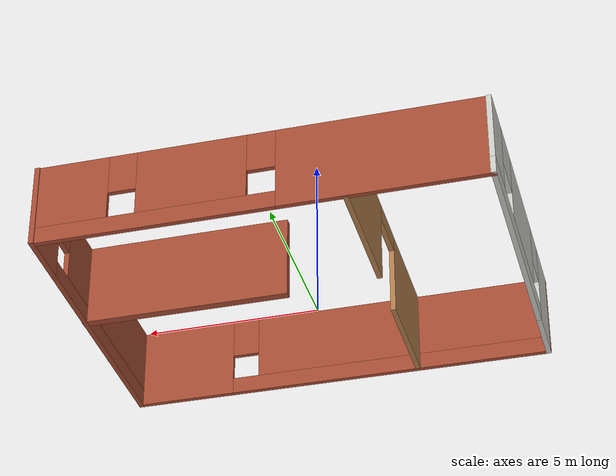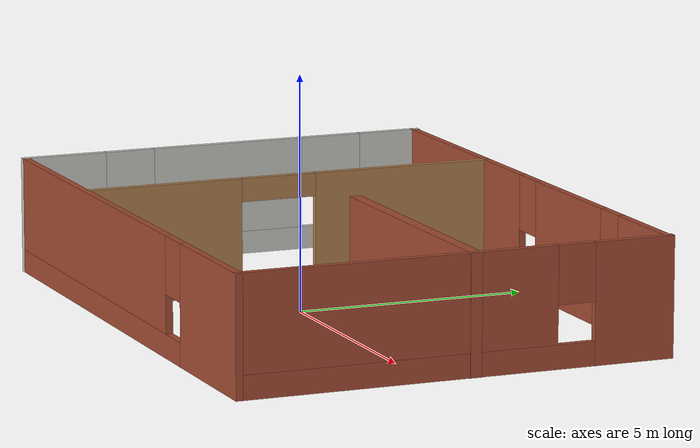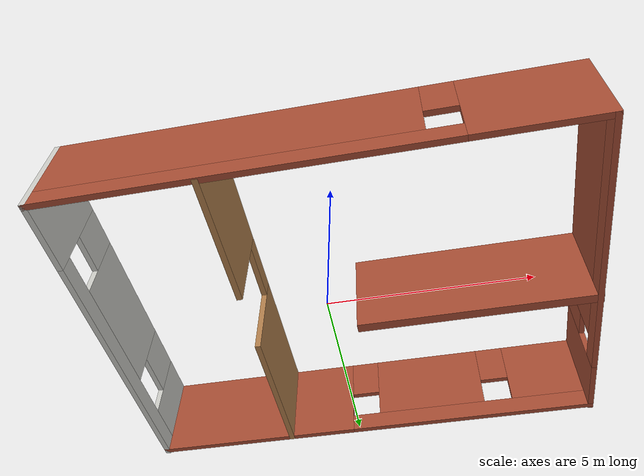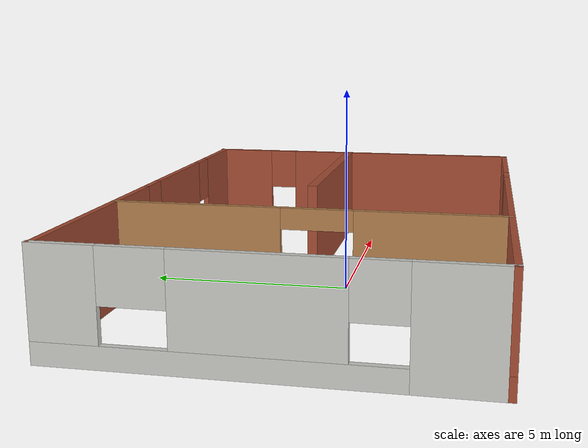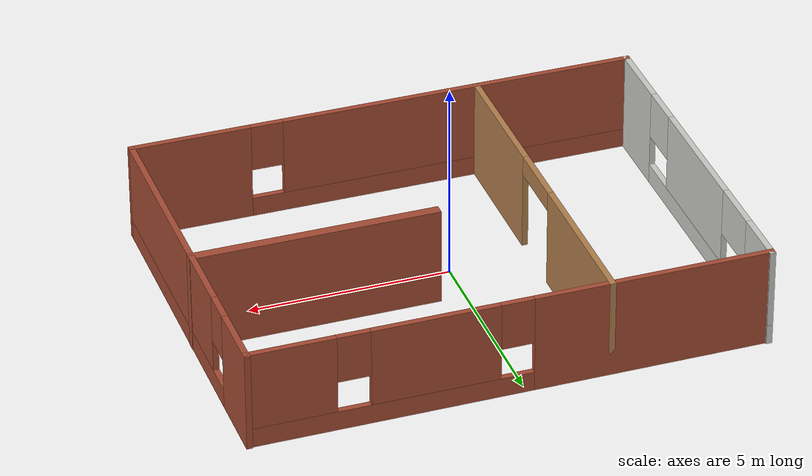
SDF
<?xml version='1.0'?>
<sdf version='1.6'>
  <model name='small_test_building'>
    <pose frame=''>0.317568 0.621309 0 0 -0 0</pose>
    <link name='Wall_1'>
      <pose frame=''>-0.004477 4.55 0 0 -0 0</pose>
      <visual name='Wall_1_Visual_0'>
        <pose frame=''>-3.44177 0 1.25 0 -0 0</pose>
        <geometry>
          <box>
            <size>5.86646 0.15 2.5</size>
          </box>
        </geometry>
        <material>
          <script>
            <uri>file://media/materials/scripts/gazebo.material</uri>
            <name>Gazebo/Bricks</name>
          </script>
          <ambient>0.435294 0.796078 0.67451 1</ambient>
        </material>
      </visual>
      <collision name='Wall_1_Collision_0'>
        <geometry>
          <box>
            <size>5.86646 0.15 2.5</size>
          </box>
        </geometry>
        <pose frame=''>-3.44177 0 1.25 0 -0 0</pose>
      </collision>
      <visual name='Wall_1_Visual_1'>
        <pose frame=''>2.93323 0 0.25 0 -0 0</pose>
        <geometry>
          <box>
            <size>6.88354 0.15 0.5</size>
          </box>
        </geometry>
        <material>
          <script>
            <uri>file://media/materials/scripts/gazebo.material</uri>
            <name>Gazebo/Bricks</name>
          </script>
          <ambient>0.435294 0.796078 0.67451 1</ambient>
        </material>
      </visual>
      <collision name='Wall_1_Collision_1'>
        <geometry>
          <box>
            <size>6.88354 0.15 0.5</size>
          </box>
        </geometry>
        <pose frame=''>2.93323 0 0.25 0 -0 0</pose>
      </collision>
      <visual name='Wall_1_Visual_2'>
        <pose frame=''>1.84388 0 1.5 0 -0 0</pose>
        <geometry>
          <box>
            <size>3.10484 0.15 2</size>
          </box>
        </geometry>
        <material>
          <script>
            <uri>file://media/materials/scripts/gazebo.material</uri>
            <name>Gazebo/Bricks</name>
          </script>
          <ambient>0.435294 0.796078 0.67451 1</ambient>
        </material>
      </visual>
      <collision name='Wall_1_Collision_2'>
        <geometry>
          <box>
            <size>3.10484 0.15 2</size>
          </box>
        </geometry>
        <pose frame=''>1.84388 0 1.5 0 -0 0</pose>
      </collision>
      <visual name='Wall_1_Visual_3'>
        <pose frame=''>5.28565 0 1.5 0 -0 0</pose>
        <geometry>
          <box>
            <size>2.17869 0.15 2</size>
          </box>
        </geometry>
        <material>
          <script>
            <uri>file://media/materials/scripts/gazebo.material</uri>
            <name>Gazebo/Bricks</name>
          </script>
          <ambient>0.435294 0.796078 0.67451 1</ambient>
        </material>
      </visual>
      <collision name='Wall_1_Collision_3'>
        <geometry>
          <box>
            <size>2.17869 0.15 2</size>
          </box>
        </geometry>
        <pose frame=''>5.28565 0 1.5 0 -0 0</pose>
      </collision>
      <visual name='Wall_1_Visual_4'>
        <pose frame=''>-0.108538 0 1.9 0 -0 0</pose>
        <geometry>
          <box>
            <size>0.8 0.15 1.2</size>
          </box>
        </geometry>
        <material>
          <script>
            <uri>file://media/materials/scripts/gazebo.material</uri>
            <name>Gazebo/Bricks</name>
          </script>
          <ambient>0.435294 0.796078 0.67451 1</ambient>
        </material>
      </visual>
      <collision name='Wall_1_Collision_4'>
        <geometry>
          <box>
            <size>0.8 0.15 1.2</size>
          </box>
        </geometry>
        <pose frame=''>-0.108538 0 1.9 0 -0 0</pose>
      </collision>
      <visual name='Wall_1_Visual_5'>
        <pose frame=''>3.7963 0 1.9 0 -0 0</pose>
        <geometry>
          <box>
            <size>0.8 0.15 1.2</size>
          </box>
        </geometry>
        <material>
          <script>
            <uri>file://media/materials/scripts/gazebo.material</uri>
            <name>Gazebo/Bricks</name>
          </script>
          <ambient>0.435294 0.796078 0.67451 1</ambient>
        </material>
      </visual>
      <collision name='Wall_1_Collision_5'>
        <geometry>
          <box>
            <size>0.8 0.15 1.2</size>
          </box>
        </geometry>
        <pose frame=''>3.7963 0 1.9 0 -0 0</pose>
      </collision>
    </link>
    <link name='Wall_2'>
      <pose frame=''>6.29552 0 0 0 0 -1.5708</pose>
      <visual name='Wall_2_Visual_0'>
        <pose frame=''>-3.79461 0 1.25 0 -0 0</pose>
        <geometry>
          <box>
            <size>1.73114 0.15 2.5</size>
          </box>
        </geometry>
        <material>
          <script>
            <uri>file://media/materials/scripts/gazebo.material</uri>
            <name>Gazebo/Bricks</name>
          </script>
          <ambient>1 1 1 1</ambient>
        </material>
      </visual>
      <collision name='Wall_2_Collision_0'>
        <geometry>
          <box>
            <size>1.73114 0.15 2.5</size>
          </box>
        </geometry>
        <pose frame=''>-3.79461 0 1.25 0 -0 0</pose>
      </collision>
      <visual name='Wall_2_Visual_1'>
        <pose frame=''>0.865572 0 0.25 0 -0 0</pose>
        <geometry>
          <box>
            <size>7.58921 0.15 0.5</size>
          </box>
        </geometry>
        <material>
          <script>
            <uri>file://media/materials/scripts/gazebo.material</uri>
            <name>Gazebo/Bricks</name>
          </script>
          <ambient>1 1 1 1</ambient>
        </material>
      </visual>
      <collision name='Wall_2_Collision_1'>
        <geometry>
          <box>
            <size>7.58921 0.15 0.5</size>
          </box>
        </geometry>
        <pose frame=''>0.865572 0 0.25 0 -0 0</pose>
      </collision>
      <visual name='Wall_2_Visual_2'>
        <pose frame=''>1.26557 0 1.5 0 -0 0</pose>
        <geometry>
          <box>
            <size>6.78921 0.15 2</size>
          </box>
        </geometry>
        <material>
          <script>
            <uri>file://media/materials/scripts/gazebo.material</uri>
            <name>Gazebo/Bricks</name>
          </script>
          <ambient>1 1 1 1</ambient>
        </material>
      </visual>
      <collision name='Wall_2_Collision_2'>
        <geometry>
          <box>
            <size>6.78921 0.15 2</size>
          </box>
        </geometry>
        <pose frame=''>1.26557 0 1.5 0 -0 0</pose>
      </collision>
      <visual name='Wall_2_Visual_3'>
        <pose frame=''>-2.52903 0 1.9 0 -0 0</pose>
        <geometry>
          <box>
            <size>0.8 0.15 1.2</size>
          </box>
        </geometry>
        <material>
          <script>
            <uri>file://media/materials/scripts/gazebo.material</uri>
            <name>Gazebo/Bricks</name>
          </script>
          <ambient>1 1 1 1</ambient>
        </material>
      </visual>
      <collision name='Wall_2_Collision_3'>
        <geometry>
          <box>
            <size>0.8 0.15 1.2</size>
          </box>
        </geometry>
        <pose frame=''>-2.52903 0 1.9 0 -0 0</pose>
      </collision>
    </link>
    <link name='Wall_3'>
      <pose frame=''>-0.004477 -4.58518 0 0 -0 3.14159</pose>
      <visual name='Wall_3_Visual_0'>
        <pose frame=''>-4.86351 0 1.25 0 -0 0</pose>
        <geometry>
          <box>
            <size>3.02298 0.15 2.5</size>
          </box>
        </geometry>
        <material>
          <script>
            <uri>file://media/materials/scripts/gazebo.material</uri>
            <name>Gazebo/Bricks</name>
          </script>
          <ambient>0.760784 0.662745 0.627451 1</ambient>
        </material>
      </visual>
      <collision name='Wall_3_Collision_0'>
        <geometry>
          <box>
            <size>3.02298 0.15 2.5</size>
          </box>
        </geometry>
        <pose frame=''>-4.86351 0 1.25 0 -0 0</pose>
      </collision>
      <visual name='Wall_3_Visual_1'>
        <pose frame=''>1.51149 0 0.25 0 -0 0</pose>
        <geometry>
          <box>
            <size>9.72701 0.15 0.5</size>
          </box>
        </geometry>
        <material>
          <script>
            <uri>file://media/materials/scripts/gazebo.material</uri>
            <name>Gazebo/Bricks</name>
          </script>
          <ambient>0.760784 0.662745 0.627451 1</ambient>
        </material>
      </visual>
      <collision name='Wall_3_Collision_1'>
        <geometry>
          <box>
            <size>9.72701 0.15 0.5</size>
          </box>
        </geometry>
        <pose frame=''>1.51149 0 0.25 0 -0 0</pose>
      </collision>
      <visual name='Wall_3_Visual_2'>
        <pose frame=''>1.91149 0 1.5 0 -0 0</pose>
        <geometry>
          <box>
            <size>8.92702 0.15 2</size>
          </box>
        </geometry>
        <material>
          <script>
            <uri>file://media/materials/scripts/gazebo.material</uri>
            <name>Gazebo/Bricks</name>
          </script>
          <ambient>0.760784 0.662745 0.627451 1</ambient>
        </material>
      </visual>
      <collision name='Wall_3_Collision_2'>
        <geometry>
          <box>
            <size>8.92702 0.15 2</size>
          </box>
        </geometry>
        <pose frame=''>1.91149 0 1.5 0 -0 0</pose>
      </collision>
      <visual name='Wall_3_Visual_3'>
        <pose frame=''>-2.95201 0 1.9 0 -0 0</pose>
        <geometry>
          <box>
            <size>0.8 0.15 1.2</size>
          </box>
        </geometry>
        <material>
          <script>
            <uri>file://media/materials/scripts/gazebo.material</uri>
            <name>Gazebo/Bricks</name>
          </script>
          <ambient>0.760784 0.662745 0.627451 1</ambient>
        </material>
      </visual>
      <collision name='Wall_3_Collision_3'>
        <geometry>
          <box>
            <size>0.8 0.15 1.2</size>
          </box>
        </geometry>
        <pose frame=''>-2.95201 0 1.9 0 -0 0</pose>
      </collision>
    </link>
    <link name='Wall_4'>
      <pose frame=''>-6.30448 0 0 0 -0 1.5708</pose>
      <visual name='Wall_4_Visual_0'>
        <pose frame=''>-3.71106 0 1.25 0 -0 0</pose>
        <geometry>
          <box>
            <size>1.89823 0.15 2.5</size>
          </box>
        </geometry>
        <material>
          <script>
            <uri>file://media/materials/scripts/gazebo.material</uri>
            <name>Gazebo/CeilingTiled</name>
          </script>
          <ambient>1 1 1 1</ambient>
        </material>
      </visual>
      <collision name='Wall_4_Collision_0'>
        <geometry>
          <box>
            <size>1.89823 0.15 2.5</size>
          </box>
        </geometry>
        <pose frame=''>-3.71106 0 1.25 0 -0 0</pose>
      </collision>
      <visual name='Wall_4_Visual_1'>
        <pose frame=''>0.949117 0 0.25 0 -0 0</pose>
        <geometry>
          <box>
            <size>7.42212 0.15 0.5</size>
          </box>
        </geometry>
        <material>
          <script>
            <uri>file://media/materials/scripts/gazebo.material</uri>
            <name>Gazebo/CeilingTiled</name>
          </script>
          <ambient>1 1 1 1</ambient>
        </material>
      </visual>
      <collision name='Wall_4_Collision_1'>
        <geometry>
          <box>
            <size>7.42212 0.15 0.5</size>
          </box>
        </geometry>
        <pose frame=''>0.949117 0 0.25 0 -0 0</pose>
      </collision>
      <visual name='Wall_4_Visual_2'>
        <pose frame=''>0.083477 0 1.5 0 -0 0</pose>
        <geometry>
          <box>
            <size>3.45763 0.15 2</size>
          </box>
        </geometry>
        <material>
          <script>
            <uri>file://media/materials/scripts/gazebo.material</uri>
            <name>Gazebo/CeilingTiled</name>
          </script>
          <ambient>1 1 1 1</ambient>
        </material>
      </visual>
      <collision name='Wall_4_Collision_2'>
        <geometry>
          <box>
            <size>3.45763 0.15 2</size>
          </box>
        </geometry>
        <pose frame=''>0.083477 0 1.5 0 -0 0</pose>
      </collision>
      <visual name='Wall_4_Visual_3'>
        <pose frame=''>3.93525 0 1.5 0 -0 0</pose>
        <geometry>
          <box>
            <size>1.44985 0.15 2</size>
          </box>
        </geometry>
        <material>
          <script>
            <uri>file://media/materials/scripts/gazebo.material</uri>
            <name>Gazebo/CeilingTiled</name>
          </script>
          <ambient>1 1 1 1</ambient>
        </material>
      </visual>
      <collision name='Wall_4_Collision_3'>
        <geometry>
          <box>
            <size>1.44985 0.15 2</size>
          </box>
        </geometry>
        <pose frame=''>3.93525 0 1.5 0 -0 0</pose>
      </collision>
      <visual name='Wall_4_Visual_4'>
        <pose frame=''>-2.20364 0 1.9 0 -0 0</pose>
        <geometry>
          <box>
            <size>1.11661 0.15 1.2</size>
          </box>
        </geometry>
        <material>
          <script>
            <uri>file://media/materials/scripts/gazebo.material</uri>
            <name>Gazebo/CeilingTiled</name>
          </script>
          <ambient>1 1 1 1</ambient>
        </material>
      </visual>
      <collision name='Wall_4_Collision_4'>
        <geometry>
          <box>
            <size>1.11661 0.15 1.2</size>
          </box>
        </geometry>
        <pose frame=''>-2.20364 0 1.9 0 -0 0</pose>
      </collision>
      <visual name='Wall_4_Visual_5'>
        <pose frame=''>2.51131 0 1.9 0 -0 0</pose>
        <geometry>
          <box>
            <size>1.39804 0.15 1.2</size>
          </box>
        </geometry>
        <material>
          <script>
            <uri>file://media/materials/scripts/gazebo.material</uri>
            <name>Gazebo/CeilingTiled</name>
          </script>
          <ambient>1 1 1 1</ambient>
        </material>
      </visual>
      <collision name='Wall_4_Collision_5'>
        <geometry>
          <box>
            <size>1.39804 0.15 1.2</size>
          </box>
        </geometry>
        <pose frame=''>2.51131 0 1.9 0 -0 0</pose>
      </collision>
    </link>
    <link name='Wall_6'>
      <collision name='Wall_6_Collision'>
        <geometry>
          <box>
            <size>6.10009 0.25 2.5</size>
          </box>
        </geometry>
        <pose frame=''>0 0 1.25 0 -0 0</pose>
      </collision>
      <visual name='Wall_6_Visual'>
        <pose frame=''>0 0 1.25 0 -0 0</pose>
        <geometry>
          <box>
            <size>6.10009 0.25 2.5</size>
          </box>
        </geometry>
        <material>
          <script>
            <uri>file://media/materials/scripts/gazebo.material</uri>
            <name>Gazebo/Bricks</name>
          </script>
          <ambient>1 1 1 1</ambient>
        </material>
      </visual>
      <pose frame=''>3.32943 0.363691 0 0 -0 3.14159</pose>
    </link>
    <link name='Wall_8'>
      <pose frame=''>-2.39963 0 0 0 0 -1.5708</pose>
      <visual name='Wall_8_Visual_0'>
        <pose frame=''>-2.58744 0 1.25 0 -0 0</pose>
        <geometry>
          <box>
            <size>4.07511 0.15 2.5</size>
          </box>
        </geometry>
        <material>
          <script>
            <uri>file://media/materials/scripts/gazebo.material</uri>
            <name>Gazebo/Wood</name>
          </script>
          <ambient>1 1 1 1</ambient>
        </material>
      </visual>
      <collision name='Wall_8_Collision_0'>
        <geometry>
          <box>
            <size>4.07511 0.15 2.5</size>
          </box>
        </geometry>
        <pose frame=''>-2.58744 0 1.25 0 -0 0</pose>
      </collision>
      <visual name='Wall_8_Visual_1'>
        <pose frame=''>2.87452 0 1.25 0 -0 0</pose>
        <geometry>
          <box>
            <size>3.50095 0.15 2.5</size>
          </box>
        </geometry>
        <material>
          <script>
            <uri>file://media/materials/scripts/gazebo.material</uri>
            <name>Gazebo/Wood</name>
          </script>
          <ambient>1 1 1 1</ambient>
        </material>
      </visual>
      <collision name='Wall_8_Collision_1'>
        <geometry>
          <box>
            <size>3.50095 0.15 2.5</size>
          </box>
        </geometry>
        <pose frame=''>2.87452 0 1.25 0 -0 0</pose>
      </collision>
      <visual name='Wall_8_Visual_2'>
        <pose frame=''>0.28708 0 2.25 0 -0 0</pose>
        <geometry>
          <box>
            <size>1.67393 0.15 0.5</size>
          </box>
        </geometry>
        <material>
          <script>
            <uri>file://media/materials/scripts/gazebo.material</uri>
            <name>Gazebo/Wood</name>
          </script>
          <ambient>1 1 1 1</ambient>
        </material>
      </visual>
      <collision name='Wall_8_Collision_2'>
        <geometry>
          <box>
            <size>1.67393 0.15 0.5</size>
          </box>
        </geometry>
        <pose frame=''>0.28708 0 2.25 0 -0 0</pose>
      </collision>
    </link>
    <static>1</static>
  </model>
</sdf>
